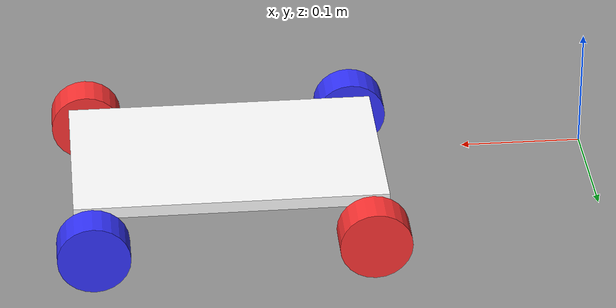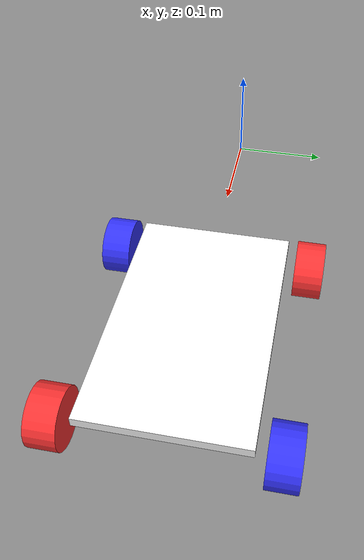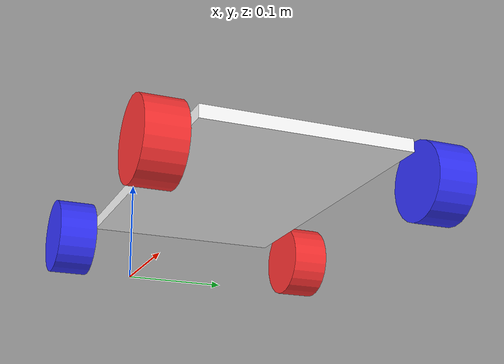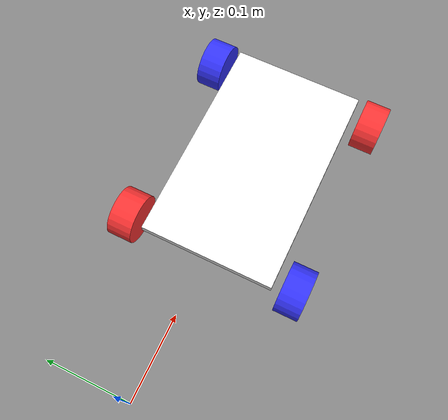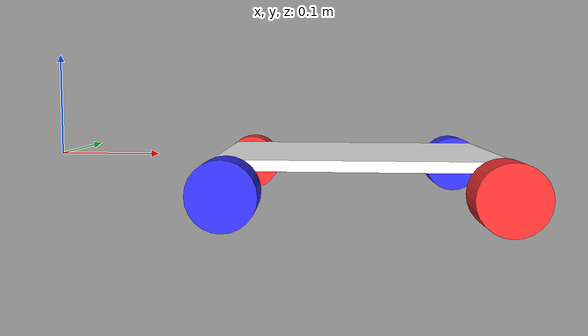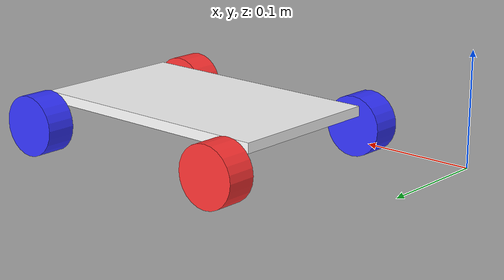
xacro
<?xml version="1.0"?>
<robot xmlns:xacro="http://www.ros.org/wiki/xacro">

    <xacro:include filename="inertial_macros.xacro"/>

    <material name="white">
        <color rgba="1 1 1 1"/>
    </material>
    <material name="orange">
        <color rgba="1 0.3 0.1 1"/>
    </material>
    <material name="blue">
        <color rgba="0.2 0.2 1 1"/>
    </material>
    <material name="red">
        <color rgba="1 0.2 0.2 1"/>
    </material>
    <material name="black">
        <color rgba="0 0 0 1"/>
    </material>

    <xacro:property name="chassis_length" value="0.26"/>
    <xacro:property name="chassis_width" value="0.16"/>
    <xacro:property name="chassis_height" value="0.01"/>

    <xacro:property name="wheel_radius" value="0.03"/>
    <xacro:property name="wheel_length" value="0.03"/>
    <xacro:property name="wheel_offset_x" value="0.115"/>
    <xacro:property name="wheel_offset_y" value="0.105"/>
    <xacro:property name="wheel_offset_z" value="0.02"/>
    <xacro:property name="wheel_mass" value="0.01"/>

    <link name="base_link"></link>

    <joint name="chassis_joint" type="fixed">
        <parent link="base_link"/>
        <child link="chassis_link"/>
        <origin xyz="0.3 0.0 0.0"/>
    </joint>
    <link name="chassis_link">
        <visual>
            <origin xyz="0.0 0.0 0.0"/>
            <geometry>
                <box size="${chassis_length} ${chassis_width} ${chassis_height}"/>
            </geometry>
            <material name="white"/>
        </visual>
        <collision>
            <origin xyz="0.0 0.0 0.0"/>
            <geometry>
                <box size="${chassis_length} ${chassis_width} ${chassis_height}"/>
            </geometry>
        </collision>
        <xacro:inertial_box mass="0.5" x="${chassis_length}" y="${chassis_width}" z="${chassis_height}">
            <origin xyz="0.0 0.0 0.0" rpy="0.0 0.0 0.0"/>
        </xacro:inertial_box>
    </link>
    <gazebo reference="chassis_link">
        <material>Gazebo/White</material>
    </gazebo>

    <!-- LEFT FORWARD WHEEL -->
    <joint name="left_forward_wheel_joint" type="continuous">
        <parent link="chassis_link"/>
        <child link="left_forward_wheel_link"/>
        <origin xyz="${wheel_offset_x} ${wheel_offset_y} ${-wheel_offset_z}" rpy="-${pi/2} 0.0 0.0"/>
        <axis xyz="0.0 0.0 1"/>
    </joint>
    <link name="left_forward_wheel_link">
        <visual>
            <geometry>
                <cylinder radius="${wheel_radius}" length="${wheel_length}"/>
            </geometry>
            <material name="blue"/>
        </visual>
        <collision>
            <geometry>
                <sphere radius="${wheel_radius}" length="${wheel_length}"/>
            </geometry>
        </collision>
        <xacro:inertial_cylinder mass="${wheel_mass}" length="${wheel_length}" radius="${wheel_radius}">
            <origin xyz="0.0 0.0 0.0" rpy="0.0 0.0 0.0"/>
        </xacro:inertial_cylinder>
    </link>
    <gazebo reference="left_forward_wheel_link">
        <material>Gazebo/Blue</material>
    </gazebo>

    <!-- RIGHT FORWARD WHEEL -->
    <joint name="right_forward_wheel_joint" type="continuous">
        <parent link="chassis_link"/>
        <child link="right_forward_wheel_link"/>
        <origin xyz="${wheel_offset_x} ${-wheel_offset_y} ${-wheel_offset_z}" rpy="${pi/2} 0.0 0.0"/>
        <axis xyz="0.0 0.0 -1"/>
    </joint>
    <link name="right_forward_wheel_link">
        <visual>
            <geometry>
                <cylinder radius="${wheel_radius}" length="${wheel_length}"/>
            </geometry>
            <material name="red"/>
        </visual>
        <collision>
            <geometry>
                <sphere radius="${wheel_radius}" length="${wheel_length}"/>
            </geometry>
        </collision>
        <xacro:inertial_cylinder mass="${wheel_mass}" length="${wheel_length}" radius="${wheel_radius}">
            <origin xyz="0.0 0.0 0.0" rpy="0.0 0.0 0.0"/>
        </xacro:inertial_cylinder>
    </link>
    <gazebo reference="right_forward_wheel_link">
        <material>Gazebo/Red</material>
    </gazebo>

    <!-- LEFT REAR WHEEL -->
    <joint name="left_rear_wheel_joint" type="continuous">
        <parent link="chassis_link"/>
        <child link="left_rear_wheel_link"/>
        <origin xyz="${-wheel_offset_x} ${wheel_offset_y} ${-wheel_offset_z}" rpy="-${pi/2} 0.0 0.0"/>
        <axis xyz="0.0 0.0 1"/>
    </joint>
    <link name="left_rear_wheel_link">
        <visual>
            <geometry>
                <cylinder radius="${wheel_radius}" length="${wheel_length}"/>
            </geometry>
            <material name="red"/>
        </visual>
        <collision>
            <geometry>
                <sphere radius="${wheel_radius}" length="${wheel_length}"/>
            </geometry>
        </collision>
        <xacro:inertial_cylinder mass="${wheel_mass}" length="${wheel_length}" radius="${wheel_radius}">
            <origin xyz="0.0 0.0 0.0" rpy="0.0 0.0 0.0"/>
        </xacro:inertial_cylinder>
    </link>
    <gazebo reference="left_rear_wheel_link">
        <material>Gazebo/Red</material>
    </gazebo>

    <!-- RIGHT REAR WHEEL -->
    <joint name="right_rear_wheel_joint" type="continuous">
        <parent link="chassis_link"/>
        <child link="right_rear_wheel_link"/>
        <origin xyz="${-wheel_offset_x} ${-wheel_offset_y} ${-wheel_offset_z}" rpy="${pi/2} 0.0 0.0"/>
        <axis xyz="0.0 0.0 -1"/>
    </joint>
    <link name="right_rear_wheel_link">
        <visual>
            <geometry>
                <cylinder radius="${wheel_radius}" length="${wheel_length}"/>
            </geometry>
            <material name="blue"/>
        </visual>
        <collision>
            <geometry>
                <sphere radius="${wheel_radius}" length="${wheel_length}"/>
            </geometry>
        </collision>
        <xacro:inertial_cylinder mass="${wheel_mass}" length="${wheel_length}" radius="${wheel_radius}">
            <origin xyz="0.0 0.0 0.0" rpy="0.0 0.0 0.0"/>
        </xacro:inertial_cylinder>
    </link>
    <gazebo reference="right_rear_wheel_link">
        <material>Gazebo/Blue</material>
    </gazebo>

</robot>
